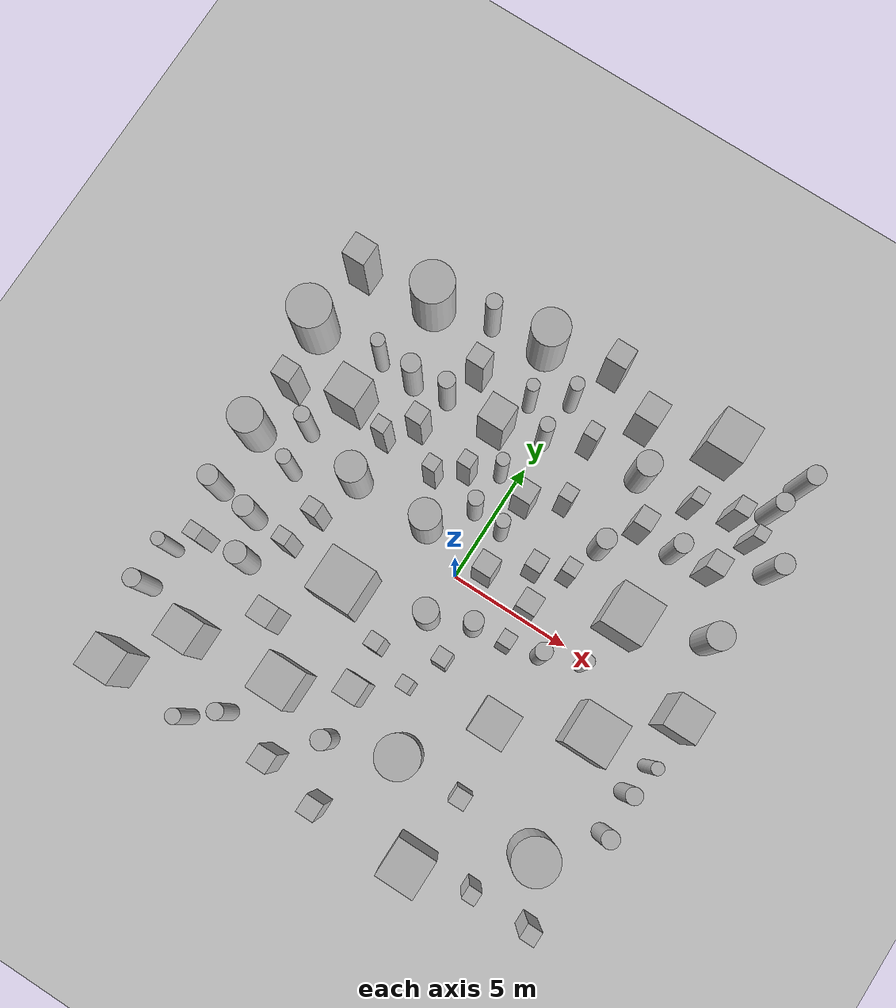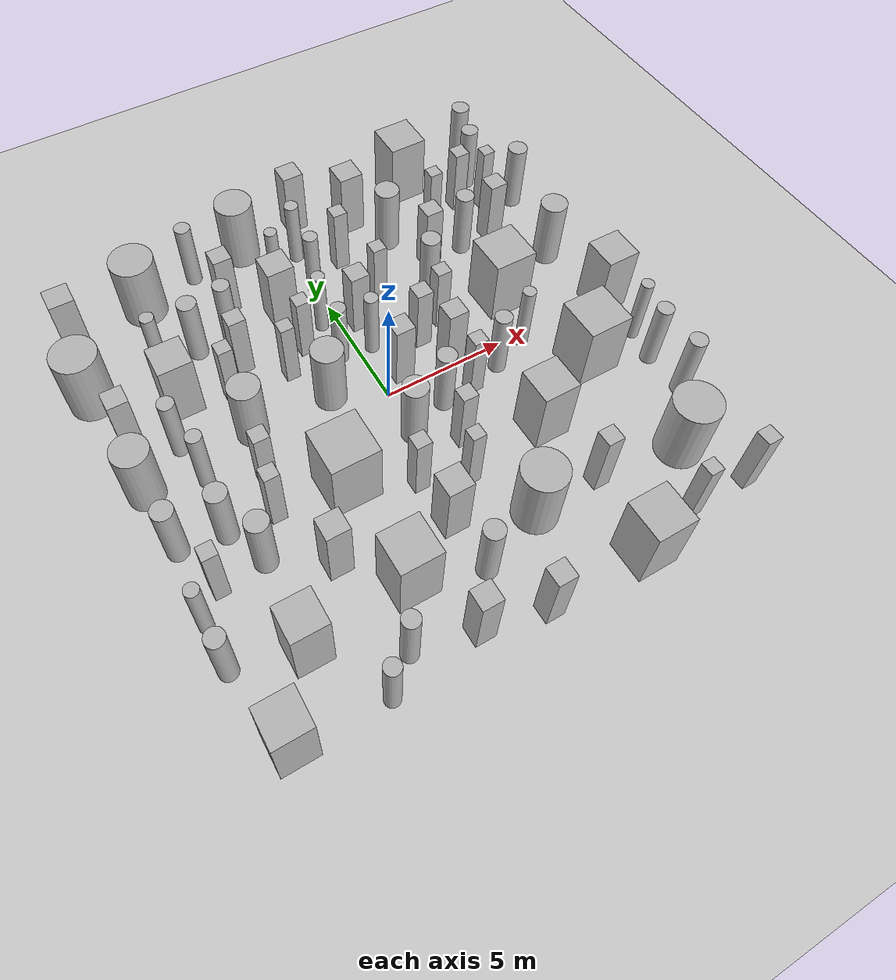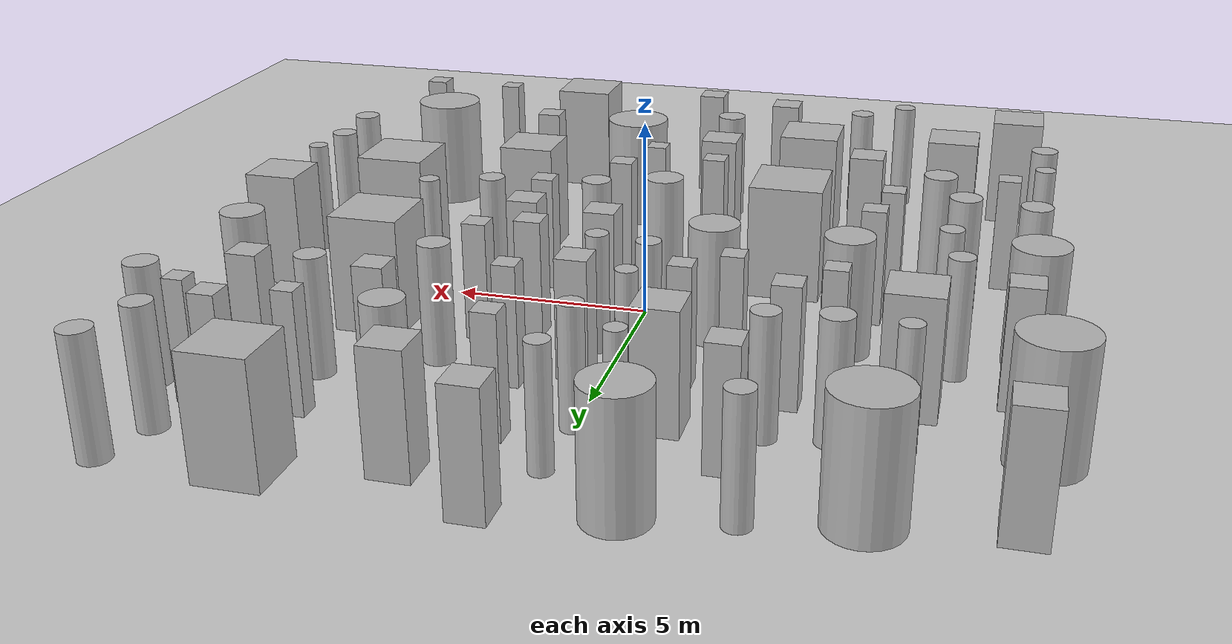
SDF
<sdf version="1.6">
        <world name="default">

        <include>
            <uri>model://ground_plane</uri>
        </include>

        <model name="obstacle_0">
            <pose>-7.1132948156340685 -7.270143338580899 1.5 0 0 0</pose>
            <link name="link">
                <collision name="collision">
                    <geometry>
                        <box>
                            <size>1.349690734021554 1.349690734021554 3.0</size>
                        </box>
                    </geometry>
                </collision>
                <visual name="visual">
                    <geometry>
                        <box>
                            <size>1.349690734021554 1.349690734021554 3.0</size>
                        </box>
                    </geometry>
                </visual>
            </link>
        </model>

        <model name="obstacle_1">
            <pose>4.230392283676991 -3.960238205161824 1.5 0 0 0</pose>
            <link name="link">
                <collision name="collision">
                    <geometry>
                        <box>
                            <size>1.4583428541846168 1.4583428541846168 3.0</size>
                        </box>
                    </geometry>
                </collision>
                <visual name="visual">
                    <geometry>
                        <box>
                            <size>1.4583428541846168 1.4583428541846168 3.0</size>
                        </box>
                    </geometry>
                </visual>
            </link>
        </model>

        <model name="obstacle_2">
            <pose>2.9751606346203108 0.39281557199467443 1.5 0 0 0</pose>
            <link name="link">
                <collision name="collision">
                    <geometry>
                        <box>
                            <size>0.796778175311845 0.796778175311845 3.0</size>
                        </box>
                    </geometry>
                </collision>
                <visual name="visual">
                    <geometry>
                        <box>
                            <size>0.796778175311845 0.796778175311845 3.0</size>
                        </box>
                    </geometry>
                </visual>
            </link>
        </model>

        <model name="obstacle_3">
            <pose>-1.783506370678003 5.676373888355723 1.5 0 0 0</pose>
            <link name="link">
                <collision name="collision">
                    <geometry>
                        <box>
                            <size>1.0941648009053304 1.0941648009053304 3.0</size>
                        </box>
                    </geometry>
                </collision>
                <visual name="visual">
                    <geometry>
                        <box>
                            <size>1.0941648009053304 1.0941648009053304 3.0</size>
                        </box>
                    </geometry>
                </visual>
            </link>
        </model>

        <model name="obstacle_4">
            <pose>-3.2226011440357265 -2.6284382446565395 1.5 0 0 0</pose>
            <link name="link">
                <collision name="collision">
                    <geometry>
                        <box>
                            <size>1.8791130934714049 1.8791130934714049 3.0</size>
                        </box>
                    </geometry>
                </collision>
                <visual name="visual">
                    <geometry>
                        <box>
                            <size>1.8791130934714049 1.8791130934714049 3.0</size>
                        </box>
                    </geometry>
                </visual>
            </link>
        </model>

        <model name="obstacle_5">
            <pose>-6.501147133647304 8.533523498937782 1.5 0 0 0</pose>
            <link name="link">
                <collision name="collision">
                    <geometry>
                        <cylinder>
                            <radius>0.8713271064853699</radius>
                            <length>3.0</length>
                        </cylinder>
                    </geometry>
                </collision>
                <visual name="visual">
                    <geometry>
                        <cylinder>
                            <radius>0.8713271064853699</radius>
                            <length>3.0</length>
                        </cylinder>
                    </geometry>
                </visual>
            </link>
        </model>

        <model name="obstacle_6">
            <pose>-8.84210235712813 -9.634123136632306 1.5 0 0 0</pose>
            <link name="link">
                <collision name="collision">
                    <geometry>
                        <box>
                            <size>1.3904065578381155 1.3904065578381155 3.0</size>
                        </box>
                    </geometry>
                </collision>
                <visual name="visual">
                    <geometry>
                        <box>
                            <size>1.3904065578381155 1.3904065578381155 3.0</size>
                        </box>
                    </geometry>
                </visual>
            </link>
        </model>

        <model name="obstacle_7">
            <pose>2.9711744948907963 8.832051246906303 1.5 0 0 0</pose>
            <link name="link">
                <collision name="collision">
                    <geometry>
                        <box>
                            <size>1.0038714799402988 1.0038714799402988 3.0</size>
                        </box>
                    </geometry>
                </collision>
                <visual name="visual">
                    <geometry>
                        <box>
                            <size>1.0038714799402988 1.0038714799402988 3.0</size>
                        </box>
                    </geometry>
                </visual>
            </link>
        </model>

        <model name="obstacle_8">
            <pose>1.9685704474900163 -6.821253247546819 1.5 0 0 0</pose>
            <link name="link">
                <collision name="collision">
                    <geometry>
                        <cylinder>
                            <radius>0.8581134021873117</radius>
                            <length>3.0</length>
                        </cylinder>
                    </geometry>
                </collision>
                <visual name="visual">
                    <geometry>
                        <cylinder>
                            <radius>0.8581134021873117</radius>
                            <length>3.0</length>
                        </cylinder>
                    </geometry>
                </visual>
            </link>
        </model>

        <model name="obstacle_9">
            <pose>0.7762989805563674 -4.514341771424329 1.5 0 0 0</pose>
            <link name="link">
                <collision name="collision">
                    <geometry>
                        <box>
                            <size>0.5266504350652059 0.5266504350652059 3.0</size>
                        </box>
                    </geometry>
                </collision>
                <visual name="visual">
                    <geometry>
                        <box>
                            <size>0.5266504350652059 0.5266504350652059 3.0</size>
                        </box>
                    </geometry>
                </visual>
            </link>
        </model>

        <model name="obstacle_10">
            <pose>5.999658984495216 9.642775143427972 1.5 0 0 0</pose>
            <link name="link">
                <collision name="collision">
                    <geometry>
                        <box>
                            <size>1.5664065331805188 1.5664065331805188 3.0</size>
                        </box>
                    </geometry>
                </collision>
                <visual name="visual">
                    <geometry>
                        <box>
                            <size>1.5664065331805188 1.5664065331805188 3.0</size>
                        </box>
                    </geometry>
                </visual>
            </link>
        </model>

        <model name="obstacle_11">
            <pose>-5.190077597032139 1.03321504861254 1.5 0 0 0</pose>
            <link name="link">
                <collision name="collision">
                    <geometry>
                        <cylinder>
                            <radius>0.6087045543077625</radius>
                            <length>3.0</length>
                        </cylinder>
                    </geometry>
                </collision>
                <visual name="visual">
                    <geometry>
                        <cylinder>
                            <radius>0.6087045543077625</radius>
                            <length>3.0</length>
                        </cylinder>
                    </geometry>
                </visual>
            </link>
        </model>

        <model name="obstacle_12">
            <pose>-3.1603664871046977 -6.891360295252675 1.5 0 0 0</pose>
            <link name="link">
                <collision name="collision">
                    <geometry>
                        <box>
                            <size>1.5962736869990903 1.5962736869990903 3.0</size>
                        </box>
                    </geometry>
                </collision>
                <visual name="visual">
                    <geometry>
                        <box>
                            <size>1.5962736869990903 1.5962736869990903 3.0</size>
                        </box>
                    </geometry>
                </visual>
            </link>
        </model>

        <model name="obstacle_13">
            <pose>-9.483875329363505 8.140447785086273 1.5 0 0 0</pose>
            <link name="link">
                <collision name="collision">
                    <geometry>
                        <box>
                            <size>0.9726678857587019 0.9726678857587019 3.0</size>
                        </box>
                    </geometry>
                </collision>
                <visual name="visual">
                    <geometry>
                        <box>
                            <size>0.9726678857587019 0.9726678857587019 3.0</size>
                        </box>
                    </geometry>
                </visual>
            </link>
        </model>

        <model name="obstacle_14">
            <pose>6.298947340190523 2.042524881661338 1.5 0 0 0</pose>
            <link name="link">
                <collision name="collision">
                    <geometry>
                        <box>
                            <size>1.7560167936863222 1.7560167936863222 3.0</size>
                        </box>
                    </geometry>
                </collision>
                <visual name="visual">
                    <geometry>
                        <box>
                            <size>1.7560167936863222 1.7560167936863222 3.0</size>
                        </box>
                    </geometry>
                </visual>
            </link>
        </model>

        <model name="obstacle_15">
            <pose>-3.475594851023227 7.097647216275806 1.5 0 0 0</pose>
            <link name="link">
                <collision name="collision">
                    <geometry>
                        <box>
                            <size>0.7603915453897878 0.7603915453897878 3.0</size>
                        </box>
                    </geometry>
                </collision>
                <visual name="visual">
                    <geometry>
                        <box>
                            <size>0.7603915453897878 0.7603915453897878 3.0</size>
                        </box>
                    </geometry>
                </visual>
            </link>
        </model>

        <model name="obstacle_16">
            <pose>-0.027048324844830773 -1.9149309083357586 1.5 0 0 0</pose>
            <link name="link">
                <collision name="collision">
                    <geometry>
                        <cylinder>
                            <radius>0.49154801232459056</radius>
                            <length>3.0</length>
                        </cylinder>
                    </geometry>
                </collision>
                <visual name="visual">
                    <geometry>
                        <cylinder>
                            <radius>0.49154801232459056</radius>
                            <length>3.0</length>
                        </cylinder>
                    </geometry>
                </visual>
            </link>
        </model>

        <model name="obstacle_17">
            <pose>4.913218085581175 5.2575025558358455 1.5 0 0 0</pose>
            <link name="link">
                <collision name="collision">
                    <geometry>
                        <box>
                            <size>0.737277214091639 0.737277214091639 3.0</size>
                        </box>
                    </geometry>
                </collision>
                <visual name="visual">
                    <geometry>
                        <box>
                            <size>0.737277214091639 0.737277214091639 3.0</size>
                        </box>
                    </geometry>
                </visual>
            </link>
        </model>

        <model name="obstacle_18">
            <pose>-7.674880454903521 -2.295748029944404 1.5 0 0 0</pose>
            <link name="link">
                <collision name="collision">
                    <geometry>
                        <cylinder>
                            <radius>0.4088320516359686</radius>
                            <length>3.0</length>
                        </cylinder>
                    </geometry>
                </collision>
                <visual name="visual">
                    <geometry>
                        <cylinder>
                            <radius>0.4088320516359686</radius>
                            <length>3.0</length>
                        </cylinder>
                    </geometry>
                </visual>
            </link>
        </model>

        <model name="obstacle_19">
            <pose>-9.855389388600138 5.273528108501996 1.5 0 0 0</pose>
            <link name="link">
                <collision name="collision">
                    <geometry>
                        <cylinder>
                            <radius>0.8800175459084116</radius>
                            <length>3.0</length>
                        </cylinder>
                    </geometry>
                </collision>
                <visual name="visual">
                    <geometry>
                        <cylinder>
                            <radius>0.8800175459084116</radius>
                            <length>3.0</length>
                        </cylinder>
                    </geometry>
                </visual>
            </link>
        </model>

        <model name="obstacle_20">
            <pose>7.483809612096927 -2.3086597103244033 1.5 0 0 0</pose>
            <link name="link">
                <collision name="collision">
                    <geometry>
                        <box>
                            <size>1.7967223326550812 1.7967223326550812 3.0</size>
                        </box>
                    </geometry>
                </collision>
                <visual name="visual">
                    <geometry>
                        <box>
                            <size>1.7967223326550812 1.7967223326550812 3.0</size>
                        </box>
                    </geometry>
                </visual>
            </link>
        </model>

        <model name="obstacle_21">
            <pose>4.311872055380439 -9.882866411968351 1.5 0 0 0</pose>
            <link name="link">
                <collision name="collision">
                    <geometry>
                        <box>
                            <size>1.5844893467421155 1.5844893467421155 3.0</size>
                        </box>
                    </geometry>
                </collision>
                <visual name="visual">
                    <geometry>
                        <box>
                            <size>1.5844893467421155 1.5844893467421155 3.0</size>
                        </box>
                    </geometry>
                </visual>
            </link>
        </model>

        <model name="obstacle_22">
            <pose>3.575036641506413 2.270374860792261 1.5 0 0 0</pose>
            <link name="link">
                <collision name="collision">
                    <geometry>
                        <box>
                            <size>0.5869381161543967 0.5869381161543967 3.0</size>
                        </box>
                    </geometry>
                </collision>
                <visual name="visual">
                    <geometry>
                        <box>
                            <size>0.5869381161543967 0.5869381161543967 3.0</size>
                        </box>
                    </geometry>
                </visual>
            </link>
        </model>

        <model name="obstacle_23">
            <pose>9.204461217318165 -9.42379730179596 1.5 0 0 0</pose>
            <link name="link">
                <collision name="collision">
                    <geometry>
                        <box>
                            <size>0.598701812407317 0.598701812407317 3.0</size>
                        </box>
                    </geometry>
                </collision>
                <visual name="visual">
                    <geometry>
                        <box>
                            <size>0.598701812407317 0.598701812407317 3.0</size>
                        </box>
                    </geometry>
                </visual>
            </link>
        </model>

        <model name="obstacle_24">
            <pose>7.980654943358466 5.2931134974842475 1.5 0 0 0</pose>
            <link name="link">
                <collision name="collision">
                    <geometry>
                        <box>
                            <size>0.7523340520150001 0.7523340520150001 3.0</size>
                        </box>
                    </geometry>
                </collision>
                <visual name="visual">
                    <geometry>
                        <box>
                            <size>0.7523340520150001 0.7523340520150001 3.0</size>
                        </box>
                    </geometry>
                </visual>
            </link>
        </model>

        <model name="obstacle_25">
            <pose>-1.9576264719456837 1.014977005767701 1.5 0 0 0</pose>
            <link name="link">
                <collision name="collision">
                    <geometry>
                        <cylinder>
                            <radius>0.6195996175075473</radius>
                            <length>3.0</length>
                        </cylinder>
                    </geometry>
                </collision>
                <visual name="visual">
                    <geometry>
                        <cylinder>
                            <radius>0.6195996175075473</radius>
                            <length>3.0</length>
                        </cylinder>
                    </geometry>
                </visual>
            </link>
        </model>

        <model name="obstacle_26">
            <pose>3.9092647582700906 7.03616915472448 1.5 0 0 0</pose>
            <link name="link">
                <collision name="collision">
                    <geometry>
                        <cylinder>
                            <radius>0.5006683555395235</radius>
                            <length>3.0</length>
                        </cylinder>
                    </geometry>
                </collision>
                <visual name="visual">
                    <geometry>
                        <cylinder>
                            <radius>0.5006683555395235</radius>
                            <length>3.0</length>
                        </cylinder>
                    </geometry>
                </visual>
            </link>
        </model>

        <model name="obstacle_27">
            <pose>8.029263152096998 -7.234359471475855 1.5 0 0 0</pose>
            <link name="link">
                <collision name="collision">
                    <geometry>
                        <cylinder>
                            <radius>0.9041477584630132</radius>
                            <length>3.0</length>
                        </cylinder>
                    </geometry>
                </collision>
                <visual name="visual">
                    <geometry>
                        <cylinder>
                            <radius>0.9041477584630132</radius>
                            <length>3.0</length>
                        </cylinder>
                    </geometry>
                </visual>
            </link>
        </model>

        <model name="obstacle_28">
            <pose>-9.519715677816706 0.5465134439197961 1.5 0 0 0</pose>
            <link name="link">
                <collision name="collision">
                    <geometry>
                        <cylinder>
                            <radius>0.6911796809964517</radius>
                            <length>3.0</length>
                        </cylinder>
                    </geometry>
                </collision>
                <visual name="visual">
                    <geometry>
                        <cylinder>
                            <radius>0.6911796809964517</radius>
                            <length>3.0</length>
                        </cylinder>
                    </geometry>
                </visual>
            </link>
        </model>

        <model name="obstacle_29">
            <pose>4.336097908198193 -0.8526469441683027 1.5 0 0 0</pose>
            <link name="link">
                <collision name="collision">
                    <geometry>
                        <cylinder>
                            <radius>0.3379942881903942</radius>
                            <length>3.0</length>
                        </cylinder>
                    </geometry>
                </collision>
                <visual name="visual">
                    <geometry>
                        <cylinder>
                            <radius>0.3379942881903942</radius>
                            <length>3.0</length>
                        </cylinder>
                    </geometry>
                </visual>
            </link>
        </model>

        <model name="obstacle_30">
            <pose>-6.941949963841358 3.5376708216031645 1.5 0 0 0</pose>
            <link name="link">
                <collision name="collision">
                    <geometry>
                        <box>
                            <size>1.3200294872695775 1.3200294872695775 3.0</size>
                        </box>
                    </geometry>
                </collision>
                <visual name="visual">
                    <geometry>
                        <box>
                            <size>1.3200294872695775 1.3200294872695775 3.0</size>
                        </box>
                    </geometry>
                </visual>
            </link>
        </model>

        <model name="obstacle_31">
            <pose>9.955192764836966 6.511978370342682 1.5 0 0 0</pose>
            <link name="link">
                <collision name="collision">
                    <geometry>
                        <cylinder>
                            <radius>0.40150574014450124</radius>
                            <length>3.0</length>
                        </cylinder>
                    </geometry>
                </collision>
                <visual name="visual">
                    <geometry>
                        <cylinder>
                            <radius>0.40150574014450124</radius>
                            <length>3.0</length>
                        </cylinder>
                    </geometry>
                </visual>
            </link>
        </model>

        <model name="obstacle_32">
            <pose>0.11470973885292501 8.141081684277719 1.5 0 0 0</pose>
            <link name="link">
                <collision name="collision">
                    <geometry>
                        <cylinder>
                            <radius>0.28188794970680264</radius>
                            <length>3.0</length>
                        </cylinder>
                    </geometry>
                </collision>
                <visual name="visual">
                    <geometry>
                        <cylinder>
                            <radius>0.28188794970680264</radius>
                            <length>3.0</length>
                        </cylinder>
                    </geometry>
                </visual>
            </link>
        </model>

        <model name="obstacle_33">
            <pose>1.6345322502837227 -1.2938820253500776 1.5 0 0 0</pose>
            <link name="link">
                <collision name="collision">
                    <geometry>
                        <cylinder>
                            <radius>0.37761932053979985</radius>
                            <length>3.0</length>
                        </cylinder>
                    </geometry>
                </collision>
                <visual name="visual">
                    <geometry>
                        <cylinder>
                            <radius>0.37761932053979985</radius>
                            <length>3.0</length>
                        </cylinder>
                    </geometry>
                </visual>
            </link>
        </model>

        <model name="obstacle_34">
            <pose>2.0288594957277937 4.520644372856166 1.5 0 0 0</pose>
            <link name="link">
                <collision name="collision">
                    <geometry>
                        <box>
                            <size>0.5623996867683729 0.5623996867683729 3.0</size>
                        </box>
                    </geometry>
                </collision>
                <visual name="visual">
                    <geometry>
                        <box>
                            <size>0.5623996867683729 0.5623996867683729 3.0</size>
                        </box>
                    </geometry>
                </visual>
            </link>
        </model>

        <model name="obstacle_35">
            <pose>-4.937692026854032 -5.1228593205729105 1.5 0 0 0</pose>
            <link name="link">
                <collision name="collision">
                    <geometry>
                        <box>
                            <size>0.8873250241315456 0.8873250241315456 3.0</size>
                        </box>
                    </geometry>
                </collision>
                <visual name="visual">
                    <geometry>
                        <box>
                            <size>0.8873250241315456 0.8873250241315456 3.0</size>
                        </box>
                    </geometry>
                </visual>
            </link>
        </model>

        <model name="obstacle_36">
            <pose>-9.233003873018621 2.7842793576351035 1.5 0 0 0</pose>
            <link name="link">
                <collision name="collision">
                    <geometry>
                        <box>
                            <size>0.7882814017789144 0.7882814017789144 3.0</size>
                        </box>
                    </geometry>
                </collision>
                <visual name="visual">
                    <geometry>
                        <box>
                            <size>0.7882814017789144 0.7882814017789144 3.0</size>
                        </box>
                    </geometry>
                </visual>
            </link>
        </model>

        <model name="obstacle_37">
            <pose>0.34547505818853175 -9.971868608273798 1.5 0 0 0</pose>
            <link name="link">
                <collision name="collision">
                    <geometry>
                        <box>
                            <size>0.7278940071236033 0.7278940071236033 3.0</size>
                        </box>
                    </geometry>
                </collision>
                <visual name="visual">
                    <geometry>
                        <box>
                            <size>0.7278940071236033 0.7278940071236033 3.0</size>
                        </box>
                    </geometry>
                </visual>
            </link>
        </model>

        <model name="obstacle_38">
            <pose>-1.8462729947387366 9.454108297191638 1.5 0 0 0</pose>
            <link name="link">
                <collision name="collision">
                    <geometry>
                        <cylinder>
                            <radius>0.7644524070812495</radius>
                            <length>3.0</length>
                        </cylinder>
                    </geometry>
                </collision>
                <visual name="visual">
                    <geometry>
                        <cylinder>
                            <radius>0.7644524070812495</radius>
                            <length>3.0</length>
                        </cylinder>
                    </geometry>
                </visual>
            </link>
        </model>

        <model name="obstacle_39">
            <pose>9.25651493200034 9.949424738772244 1.5 0 0 0</pose>
            <link name="link">
                <collision name="collision">
                    <geometry>
                        <cylinder>
                            <radius>0.3784721601723122</radius>
                            <length>3.0</length>
                        </cylinder>
                    </geometry>
                </collision>
                <visual name="visual">
                    <geometry>
                        <cylinder>
                            <radius>0.3784721601723122</radius>
                            <length>3.0</length>
                        </cylinder>
                    </geometry>
                </visual>
            </link>
        </model>

        <model name="obstacle_40">
            <pose>-9.574418456421832 -6.647890213495384 1.5 0 0 0</pose>
            <link name="link">
                <collision name="collision">
                    <geometry>
                        <cylinder>
                            <radius>0.3501983428181214</radius>
                            <length>3.0</length>
                        </cylinder>
                    </geometry>
                </collision>
                <visual name="visual">
                    <geometry>
                        <cylinder>
                            <radius>0.3501983428181214</radius>
                            <length>3.0</length>
                        </cylinder>
                    </geometry>
                </visual>
            </link>
        </model>

        <model name="obstacle_41">
            <pose>0.6853060075232076 3.7363320081433233 1.5 0 0 0</pose>
            <link name="link">
                <collision name="collision">
                    <geometry>
                        <box>
                            <size>0.7715662080040709 0.7715662080040709 3.0</size>
                        </box>
                    </geometry>
                </collision>
                <visual name="visual">
                    <geometry>
                        <box>
                            <size>0.7715662080040709 0.7715662080040709 3.0</size>
                        </box>
                    </geometry>
                </visual>
            </link>
        </model>

        <model name="obstacle_42">
            <pose>-0.7209725321134677 2.5153717256918195 1.5 0 0 0</pose>
            <link name="link">
                <collision name="collision">
                    <geometry>
                        <cylinder>
                            <radius>0.30386724362440193</radius>
                            <length>3.0</length>
                        </cylinder>
                    </geometry>
                </collision>
                <visual name="visual">
                    <geometry>
                        <cylinder>
                            <radius>0.30386724362440193</radius>
                            <length>3.0</length>
                        </cylinder>
                    </geometry>
                </visual>
            </link>
        </model>

        <model name="obstacle_43">
            <pose>0.9001077750422066 9.985082850497975 1.5 0 0 0</pose>
            <link name="link">
                <collision name="collision">
                    <geometry>
                        <box>
                            <size>0.8675510460557181 0.8675510460557181 3.0</size>
                        </box>
                    </geometry>
                </collision>
                <visual name="visual">
                    <geometry>
                        <box>
                            <size>0.8675510460557181 0.8675510460557181 3.0</size>
                        </box>
                    </geometry>
                </visual>
            </link>
        </model>

        <model name="obstacle_44">
            <pose>9.932727748275308 -0.08680366556350627 1.5 0 0 0</pose>
            <link name="link">
                <collision name="collision">
                    <geometry>
                        <box>
                            <size>1.3711550859729815 1.3711550859729815 3.0</size>
                        </box>
                    </geometry>
                </collision>
                <visual name="visual">
                    <geometry>
                        <box>
                            <size>1.3711550859729815 1.3711550859729815 3.0</size>
                        </box>
                    </geometry>
                </visual>
            </link>
        </model>

        <model name="obstacle_45">
            <pose>-4.23203023415073 4.022312468466485 1.5 0 0 0</pose>
            <link name="link">
                <collision name="collision">
                    <geometry>
                        <box>
                            <size>0.6824906566088857 0.6824906566088857 3.0</size>
                        </box>
                    </geometry>
                </collision>
                <visual name="visual">
                    <geometry>
                        <box>
                            <size>0.6824906566088857 0.6824906566088857 3.0</size>
                        </box>
                    </geometry>
                </visual>
            </link>
        </model>

        <model name="obstacle_46">
            <pose>7.692404388574641 7.5600700320139715 1.5 0 0 0</pose>
            <link name="link">
                <collision name="collision">
                    <geometry>
                        <box>
                            <size>0.6258831953617735 0.6258831953617735 3.0</size>
                        </box>
                    </geometry>
                </collision>
                <visual name="visual">
                    <geometry>
                        <box>
                            <size>0.6258831953617735 0.6258831953617735 3.0</size>
                        </box>
                    </geometry>
                </visual>
            </link>
        </model>

        <model name="obstacle_47">
            <pose>-9.598286048100581 -4.962622730818181 1.5 0 0 0</pose>
            <link name="link">
                <collision name="collision">
                    <geometry>
                        <cylinder>
                            <radius>0.263730961779803</radius>
                            <length>3.0</length>
                        </cylinder>
                    </geometry>
                </collision>
                <visual name="visual">
                    <geometry>
                        <cylinder>
                            <radius>0.263730961779803</radius>
                            <length>3.0</length>
                        </cylinder>
                    </geometry>
                </visual>
            </link>
        </model>

        <model name="obstacle_48">
            <pose>-6.959165553296853 -3.862951641196622 1.5 0 0 0</pose>
            <link name="link">
                <collision name="collision">
                    <geometry>
                        <cylinder>
                            <radius>0.4325138378305365</radius>
                            <length>3.0</length>
                        </cylinder>
                    </geometry>
                </collision>
                <visual name="visual">
                    <geometry>
                        <cylinder>
                            <radius>0.4325138378305365</radius>
                            <length>3.0</length>
                        </cylinder>
                    </geometry>
                </visual>
            </link>
        </model>

        <model name="obstacle_49">
            <pose>9.365400141792904 3.042405065130037 1.5 0 0 0</pose>
            <link name="link">
                <collision name="collision">
                    <geometry>
                        <cylinder>
                            <radius>0.5382741725307649</radius>
                            <length>3.0</length>
                        </cylinder>
                    </geometry>
                </collision>
                <visual name="visual">
                    <geometry>
                        <cylinder>
                            <radius>0.5382741725307649</radius>
                            <length>3.0</length>
                        </cylinder>
                    </geometry>
                </visual>
            </link>
        </model>

        <model name="obstacle_50">
            <pose>-4.3528875016898505 -8.981419703401595 1.5 0 0 0</pose>
            <link name="link">
                <collision name="collision">
                    <geometry>
                        <cylinder>
                            <radius>0.3217296740079192</radius>
                            <length>3.0</length>
                        </cylinder>
                    </geometry>
                </collision>
                <visual name="visual">
                    <geometry>
                        <cylinder>
                            <radius>0.3217296740079192</radius>
                            <length>3.0</length>
                        </cylinder>
                    </geometry>
                </visual>
            </link>
        </model>

        <model name="obstacle_51">
            <pose>8.805169189310611 8.481404718037446 1.5 0 0 0</pose>
            <link name="link">
                <collision name="collision">
                    <geometry>
                        <cylinder>
                            <radius>0.3589872595843865</radius>
                            <length>3.0</length>
                        </cylinder>
                    </geometry>
                </collision>
                <visual name="visual">
                    <geometry>
                        <cylinder>
                            <radius>0.3589872595843865</radius>
                            <length>3.0</length>
                        </cylinder>
                    </geometry>
                </visual>
            </link>
        </model>

        <model name="obstacle_52">
            <pose>1.376222361502947 -2.9940501612959842 1.5 0 0 0</pose>
            <link name="link">
                <collision name="collision">
                    <geometry>
                        <box>
                            <size>0.6054922334896192 0.6054922334896192 3.0</size>
                        </box>
                    </geometry>
                </collision>
                <visual name="visual">
                    <geometry>
                        <box>
                            <size>0.6054922334896192 0.6054922334896192 3.0</size>
                        </box>
                    </geometry>
                </visual>
            </link>
        </model>

        <model name="obstacle_53">
            <pose>-0.7798475698818379 -5.667193114575819 1.5 0 0 0</pose>
            <link name="link">
                <collision name="collision">
                    <geometry>
                        <box>
                            <size>0.9735281707004695 0.9735281707004695 3.0</size>
                        </box>
                    </geometry>
                </collision>
                <visual name="visual">
                    <geometry>
                        <box>
                            <size>0.9735281707004695 0.9735281707004695 3.0</size>
                        </box>
                    </geometry>
                </visual>
            </link>
        </model>

        <model name="obstacle_54">
            <pose>4.0615821329453645 3.8253974686031462 1.5 0 0 0</pose>
            <link name="link">
                <collision name="collision">
                    <geometry>
                        <cylinder>
                            <radius>0.3951740270827882</radius>
                            <length>3.0</length>
                        </cylinder>
                    </geometry>
                </collision>
                <visual name="visual">
                    <geometry>
                        <cylinder>
                            <radius>0.3951740270827882</radius>
                            <length>3.0</length>
                        </cylinder>
                    </geometry>
                </visual>
            </link>
        </model>

        <model name="obstacle_55">
            <pose>-1.7587768065642422 3.570108999073277 1.5 0 0 0</pose>
            <link name="link">
                <collision name="collision">
                    <geometry>
                        <box>
                            <size>0.5677917210748967 0.5677917210748967 3.0</size>
                        </box>
                    </geometry>
                </collision>
                <visual name="visual">
                    <geometry>
                        <box>
                            <size>0.5677917210748967 0.5677917210748967 3.0</size>
                        </box>
                    </geometry>
                </visual>
            </link>
        </model>

        <model name="obstacle_56">
            <pose>4.625064375567538 -6.829506337859483 1.5 0 0 0</pose>
            <link name="link">
                <collision name="collision">
                    <geometry>
                        <box>
                            <size>0.6425460703927781 0.6425460703927781 3.0</size>
                        </box>
                    </geometry>
                </collision>
                <visual name="visual">
                    <geometry>
                        <box>
                            <size>0.6425460703927781 0.6425460703927781 3.0</size>
                        </box>
                    </geometry>
                </visual>
            </link>
        </model>

        <model name="obstacle_57">
            <pose>6.48997399660281 5.183373423892286 1.5 0 0 0</pose>
            <link name="link">
                <collision name="collision">
                    <geometry>
                        <cylinder>
                            <radius>0.3702935492063396</radius>
                            <length>3.0</length>
                        </cylinder>
                    </geometry>
                </collision>
                <visual name="visual">
                    <geometry>
                        <cylinder>
                            <radius>0.3702935492063396</radius>
                            <length>3.0</length>
                        </cylinder>
                    </geometry>
                </visual>
            </link>
        </model>

        <model name="obstacle_58">
            <pose>0.9062043102744113 0.7078825752695614 1.5 0 0 0</pose>
            <link name="link">
                <collision name="collision">
                    <geometry>
                        <box>
                            <size>0.7925756872987866 0.7925756872987866 3.0</size>
                        </box>
                    </geometry>
                </collision>
                <visual name="visual">
                    <geometry>
                        <box>
                            <size>0.7925756872987866 0.7925756872987866 3.0</size>
                        </box>
                    </geometry>
                </visual>
            </link>
        </model>

        <model name="obstacle_59">
            <pose>1.581989922791287 6.9753633139931495 1.5 0 0 0</pose>
            <link name="link">
                <collision name="collision">
                    <geometry>
                        <box>
                            <size>0.5919049512516402 0.5919049512516402 3.0</size>
                        </box>
                    </geometry>
                </collision>
                <visual name="visual">
                    <geometry>
                        <box>
                            <size>0.5919049512516402 0.5919049512516402 3.0</size>
                        </box>
                    </geometry>
                </visual>
            </link>
        </model>

        <model name="obstacle_60">
            <pose>-1.228973060951768 7.2247821526792 1.5 0 0 0</pose>
            <link name="link">
                <collision name="collision">
                    <geometry>
                        <cylinder>
                            <radius>0.2561928039699254</radius>
                            <length>3.0</length>
                        </cylinder>
                    </geometry>
                </collision>
                <visual name="visual">
                    <geometry>
                        <cylinder>
                            <radius>0.2561928039699254</radius>
                            <length>3.0</length>
                        </cylinder>
                    </geometry>
                </visual>
            </link>
        </model>

        <model name="obstacle_62">
            <pose>-7.468883847312222 0.007631792175654795 1.5 0 0 0</pose>
            <link name="link">
                <collision name="collision">
                    <geometry>
                        <cylinder>
                            <radius>0.2967939455061823</radius>
                            <length>3.0</length>
                        </cylinder>
                    </geometry>
                </collision>
                <visual name="visual">
                    <geometry>
                        <cylinder>
                            <radius>0.2967939455061823</radius>
                            <length>3.0</length>
                        </cylinder>
                    </geometry>
                </visual>
            </link>
        </model>

        <model name="obstacle_63">
            <pose>-0.6462833318049466 -7.7892387516723005 1.5 0 0 0</pose>
            <link name="link">
                <collision name="collision">
                    <geometry>
                        <cylinder>
                            <radius>0.3854522121153368</radius>
                            <length>3.0</length>
                        </cylinder>
                    </geometry>
                </collision>
                <visual name="visual">
                    <geometry>
                        <cylinder>
                            <radius>0.3854522121153368</radius>
                            <length>3.0</length>
                        </cylinder>
                    </geometry>
                </visual>
            </link>
        </model>

        <model name="obstacle_64">
            <pose>9.80950716732239 -5.170183207457968 1.5 0 0 0</pose>
            <link name="link">
                <collision name="collision">
                    <geometry>
                        <cylinder>
                            <radius>0.3473716324106076</radius>
                            <length>3.0</length>
                        </cylinder>
                    </geometry>
                </collision>
                <visual name="visual">
                    <geometry>
                        <cylinder>
                            <radius>0.3473716324106076</radius>
                            <length>3.0</length>
                        </cylinder>
                    </geometry>
                </visual>
            </link>
        </model>

        <model name="obstacle_65">
            <pose>-5.475046690335102 5.479004106643114 1.5 0 0 0</pose>
            <link name="link">
                <collision name="collision">
                    <geometry>
                        <cylinder>
                            <radius>0.38421584444846413</radius>
                            <length>3.0</length>
                        </cylinder>
                    </geometry>
                </collision>
                <visual name="visual">
                    <geometry>
                        <cylinder>
                            <radius>0.38421584444846413</radius>
                            <length>3.0</length>
                        </cylinder>
                    </geometry>
                </visual>
            </link>
        </model>

        <model name="obstacle_66">
            <pose>2.395743649741629 1.7585219356279183 1.5 0 0 0</pose>
            <link name="link">
                <collision name="collision">
                    <geometry>
                        <box>
                            <size>0.6629005733502863 0.6629005733502863 3.0</size>
                        </box>
                    </geometry>
                </collision>
                <visual name="visual">
                    <geometry>
                        <box>
                            <size>0.6629005733502863 0.6629005733502863 3.0</size>
                        </box>
                    </geometry>
                </visual>
            </link>
        </model>

        <model name="obstacle_67">
            <pose>-2.0275214469928438 -9.4617536749818 1.5 0 0 0</pose>
            <link name="link">
                <collision name="collision">
                    <geometry>
                        <box>
                            <size>0.7863762160498207 0.7863762160498207 3.0</size>
                        </box>
                    </geometry>
                </collision>
                <visual name="visual">
                    <geometry>
                        <box>
                            <size>0.7863762160498207 0.7863762160498207 3.0</size>
                        </box>
                    </geometry>
                </visual>
            </link>
        </model>

        <model name="obstacle_68">
            <pose>-9.39839992618059 -2.051176097043655 1.5 0 0 0</pose>
            <link name="link">
                <collision name="collision">
                    <geometry>
                        <cylinder>
                            <radius>0.4001153783983956</radius>
                            <length>3.0</length>
                        </cylinder>
                    </geometry>
                </collision>
                <visual name="visual">
                    <geometry>
                        <cylinder>
                            <radius>0.4001153783983956</radius>
                            <length>3.0</length>
                        </cylinder>
                    </geometry>
                </visual>
            </link>
        </model>

        <model name="obstacle_69">
            <pose>-5.1428904438426315 2.9503922275664234 1.5 0 0 0</pose>
            <link name="link">
                <collision name="collision">
                    <geometry>
                        <box>
                            <size>0.5703439658581637 0.5703439658581637 3.0</size>
                        </box>
                    </geometry>
                </collision>
                <visual name="visual">
                    <geometry>
                        <box>
                            <size>0.5703439658581637 0.5703439658581637 3.0</size>
                        </box>
                    </geometry>
                </visual>
            </link>
        </model>

        <model name="obstacle_70">
            <pose>0.011956700700711309 6.248463887223398 1.5 0 0 0</pose>
            <link name="link">
                <collision name="collision">
                    <geometry>
                        <cylinder>
                            <radius>0.2979553462221076</radius>
                            <length>3.0</length>
                        </cylinder>
                    </geometry>
                </collision>
                <visual name="visual">
                    <geometry>
                        <cylinder>
                            <radius>0.2979553462221076</radius>
                            <length>3.0</length>
                        </cylinder>
                    </geometry>
                </visual>
            </link>
        </model>

        <model name="obstacle_71">
            <pose>-5.565461884561951 -0.9754088886193557 1.5 0 0 0</pose>
            <link name="link">
                <collision name="collision">
                    <geometry>
                        <box>
                            <size>0.6094558394115746 0.6094558394115746 3.0</size>
                        </box>
                    </geometry>
                </collision>
                <visual name="visual">
                    <geometry>
                        <box>
                            <size>0.6094558394115746 0.6094558394115746 3.0</size>
                        </box>
                    </geometry>
                </visual>
            </link>
        </model>

        <model name="obstacle_72">
            <pose>3.0022114183850377 -1.1906786937277918 1.5 0 0 0</pose>
            <link name="link">
                <collision name="collision">
                    <geometry>
                        <box>
                            <size>0.5683548670163998 0.5683548670163998 3.0</size>
                        </box>
                    </geometry>
                </collision>
                <visual name="visual">
                    <geometry>
                        <box>
                            <size>0.5683548670163998 0.5683548670163998 3.0</size>
                        </box>
                    </geometry>
                </visual>
            </link>
        </model>

        <model name="obstacle_74">
            <pose>6.11221662098664 7.017765805951729 1.5 0 0 0</pose>
            <link name="link">
                <collision name="collision">
                    <geometry>
                        <box>
                            <size>0.5296269352306215 0.5296269352306215 3.0</size>
                        </box>
                    </geometry>
                </collision>
                <visual name="visual">
                    <geometry>
                        <box>
                            <size>0.5296269352306215 0.5296269352306215 3.0</size>
                        </box>
                    </geometry>
                </visual>
            </link>
        </model>

        <model name="obstacle_75">
            <pose>-4.015904543027373 5.661476845622948 1.5 0 0 0</pose>
            <link name="link">
                <collision name="collision">
                    <geometry>
                        <cylinder>
                            <radius>0.33488468395865867</radius>
                            <length>3.0</length>
                        </cylinder>
                    </geometry>
                </collision>
                <visual name="visual">
                    <geometry>
                        <cylinder>
                            <radius>0.33488468395865867</radius>
                            <length>3.0</length>
                        </cylinder>
                    </geometry>
                </visual>
            </link>
        </model>

        <model name="obstacle_76">
            <pose>-2.7855446161342794 2.7525658691695902 1.5 0 0 0</pose>
            <link name="link">
                <collision name="collision">
                    <geometry>
                        <box>
                            <size>0.5477836114721842 0.5477836114721842 3.0</size>
                        </box>
                    </geometry>
                </collision>
                <visual name="visual">
                    <geometry>
                        <box>
                            <size>0.5477836114721842 0.5477836114721842 3.0</size>
                        </box>
                    </geometry>
                </visual>
            </link>
        </model>

        <model name="obstacle_78">
            <pose>9.718964682108993 -3.443582083823107 1.5 0 0 0</pose>
            <link name="link">
                <collision name="collision">
                    <geometry>
                        <cylinder>
                            <radius>0.3305874208155728</radius>
                            <length>3.0</length>
                        </cylinder>
                    </geometry>
                </collision>
                <visual name="visual">
                    <geometry>
                        <cylinder>
                            <radius>0.3305874208155728</radius>
                            <length>3.0</length>
                        </cylinder>
                    </geometry>
                </visual>
            </link>
        </model>

        <model name="obstacle_79">
            <pose>6.752069655718785 -9.412399027279514 1.5 0 0 0</pose>
            <link name="link">
                <collision name="collision">
                    <geometry>
                        <box>
                            <size>0.5375412207723742 0.5375412207723742 3.0</size>
                        </box>
                    </geometry>
                </collision>
                <visual name="visual">
                    <geometry>
                        <box>
                            <size>0.5375412207723742 0.5375412207723742 3.0</size>
                        </box>
                    </geometry>
                </visual>
            </link>
        </model>

        <model name="obstacle_80">
            <pose>-5.886542134231716 -2.4538310706216198 1.5 0 0 0</pose>
            <link name="link">
                <collision name="collision">
                    <geometry>
                        <box>
                            <size>0.5780566022555307 0.5780566022555307 3.0</size>
                        </box>
                    </geometry>
                </collision>
                <visual name="visual">
                    <geometry>
                        <box>
                            <size>0.5780566022555307 0.5780566022555307 3.0</size>
                        </box>
                    </geometry>
                </visual>
            </link>
        </model>

        <model name="obstacle_81">
            <pose>-0.6623406260577891 4.262855895592407 1.5 0 0 0</pose>
            <link name="link">
                <collision name="collision">
                    <geometry>
                        <cylinder>
                            <radius>0.2629238090567472</radius>
                            <length>3.0</length>
                        </cylinder>
                    </geometry>
                </collision>
                <visual name="visual">
                    <geometry>
                        <cylinder>
                            <radius>0.2629238090567472</radius>
                            <length>3.0</length>
                        </cylinder>
                    </geometry>
                </visual>
            </link>
        </model>

        <model name="obstacle_84">
            <pose>-6.989684892896404 5.556681959370744 1.5 0 0 0</pose>
            <link name="link">
                <collision name="collision">
                    <geometry>
                        <cylinder>
                            <radius>0.2775123843841143</radius>
                            <length>3.0</length>
                        </cylinder>
                    </geometry>
                </collision>
                <visual name="visual">
                    <geometry>
                        <cylinder>
                            <radius>0.2775123843841143</radius>
                            <length>3.0</length>
                        </cylinder>
                    </geometry>
                </visual>
            </link>
        </model>

        <model name="obstacle_85">
            <pose>-4.151205212562528 9.136211702259484 1.5 0 0 0</pose>
            <link name="link">
                <collision name="collision">
                    <geometry>
                        <cylinder>
                            <radius>0.3229932907633154</radius>
                            <length>3.0</length>
                        </cylinder>
                    </geometry>
                </collision>
                <visual name="visual">
                    <geometry>
                        <cylinder>
                            <radius>0.3229932907633154</radius>
                            <length>3.0</length>
                        </cylinder>
                    </geometry>
                </visual>
            </link>
        </model>

        <model name="obstacle_86">
            <pose>0.567044145294826 2.3434607542308825 1.5 0 0 0</pose>
            <link name="link">
                <collision name="collision">
                    <geometry>
                        <cylinder>
                            <radius>0.279743452342999</radius>
                            <length>3.0</length>
                        </cylinder>
                    </geometry>
                </collision>
                <visual name="visual">
                    <geometry>
                        <cylinder>
                            <radius>0.279743452342999</radius>
                            <length>3.0</length>
                        </cylinder>
                    </geometry>
                </visual>
            </link>
        </model>

        <model name="obstacle_87">
            <pose>5.850996538592323 -0.3042195617982202 1.5 0 0 0</pose>
            <link name="link">
                <collision name="collision">
                    <geometry>
                        <cylinder>
                            <radius>0.2595098493893072</radius>
                            <length>3.0</length>
                        </cylinder>
                    </geometry>
                </collision>
                <visual name="visual">
                    <geometry>
                        <cylinder>
                            <radius>0.2595098493893072</radius>
                            <length>3.0</length>
                        </cylinder>
                    </geometry>
                </visual>
            </link>
        </model>

        <model name="obstacle_90">
            <pose>-0.976893495765152 -3.8385701530957217 1.5 0 0 0</pose>
            <link name="link">
                <collision name="collision">
                    <geometry>
                        <box>
                            <size>0.5903265007590748 0.5903265007590748 3.0</size>
                        </box>
                    </geometry>
                </collision>
                <visual name="visual">
                    <geometry>
                        <box>
                            <size>0.5903265007590748 0.5903265007590748 3.0</size>
                        </box>
                    </geometry>
                </visual>
            </link>
        </model>

        <model name="obstacle_91">
            <pose>-5.5196841306851585 -9.928181525033175 1.5 0 0 0</pose>
            <link name="link">
                <collision name="collision">
                    <geometry>
                        <cylinder>
                            <radius>0.29627858549460306</radius>
                            <length>3.0</length>
                        </cylinder>
                    </geometry>
                </collision>
                <visual name="visual">
                    <geometry>
                        <cylinder>
                            <radius>0.29627858549460306</radius>
                            <length>3.0</length>
                        </cylinder>
                    </geometry>
                </visual>
            </link>
        </model>

        <model name="obstacle_92">
            <pose>9.909648950344472 -2.181673456255682 1.5 0 0 0</pose>
            <link name="link">
                <collision name="collision">
                    <geometry>
                        <cylinder>
                            <radius>0.2507309157486085</radius>
                            <length>3.0</length>
                        </cylinder>
                    </geometry>
                </collision>
                <visual name="visual">
                    <geometry>
                        <cylinder>
                            <radius>0.2507309157486085</radius>
                            <length>3.0</length>
                        </cylinder>
                    </geometry>
                </visual>
            </link>
        </model>

        <model name="obstacle_94">
            <pose>8.707297544230254 7.042802460389812 1.5 0 0 0</pose>
            <link name="link">
                <collision name="collision">
                    <geometry>
                        <box>
                            <size>0.5077918664821802 0.5077918664821802 3.0</size>
                        </box>
                    </geometry>
                </collision>
                <visual name="visual">
                    <geometry>
                        <box>
                            <size>0.5077918664821802 0.5077918664821802 3.0</size>
                        </box>
                    </geometry>
                </visual>
            </link>
        </model>

        <model name="obstacle_95">
            <pose>-7.785635823756351 1.693536065831605 1.5 0 0 0</pose>
            <link name="link">
                <collision name="collision">
                    <geometry>
                        <cylinder>
                            <radius>0.31666335546893926</radius>
                            <length>3.0</length>
                        </cylinder>
                    </geometry>
                </collision>
                <visual name="visual">
                    <geometry>
                        <cylinder>
                            <radius>0.31666335546893926</radius>
                            <length>3.0</length>
                        </cylinder>
                    </geometry>
                </visual>
            </link>
        </model>

        <model name="obstacle_96">
            <pose>-8.710172169689512 -4.027240074016978 1.5 0 0 0</pose>
            <link name="link">
                <collision name="collision">
                    <geometry>
                        <box>
                            <size>0.5678870526072044 0.5678870526072044 3.0</size>
                        </box>
                    </geometry>
                </collision>
                <visual name="visual">
                    <geometry>
                        <box>
                            <size>0.5678870526072044 0.5678870526072044 3.0</size>
                        </box>
                    </geometry>
                </visual>
            </link>
        </model>

        </world>
    </sdf>
